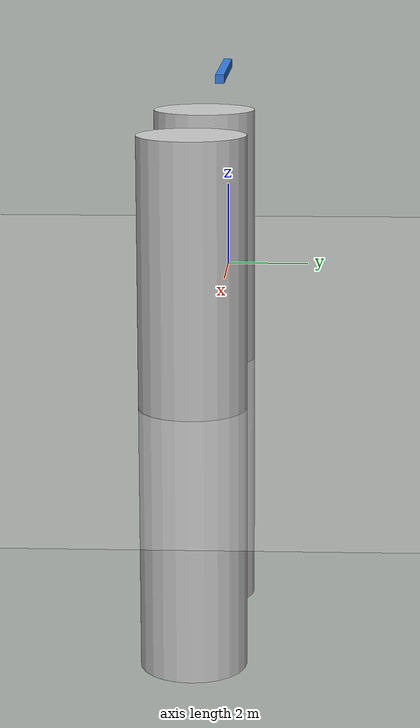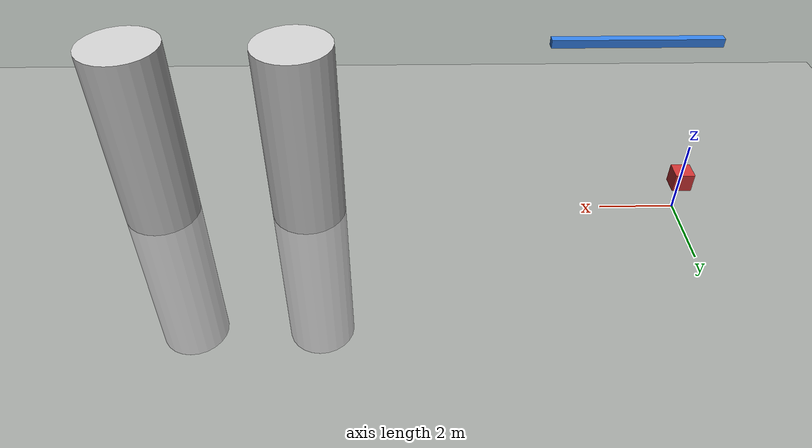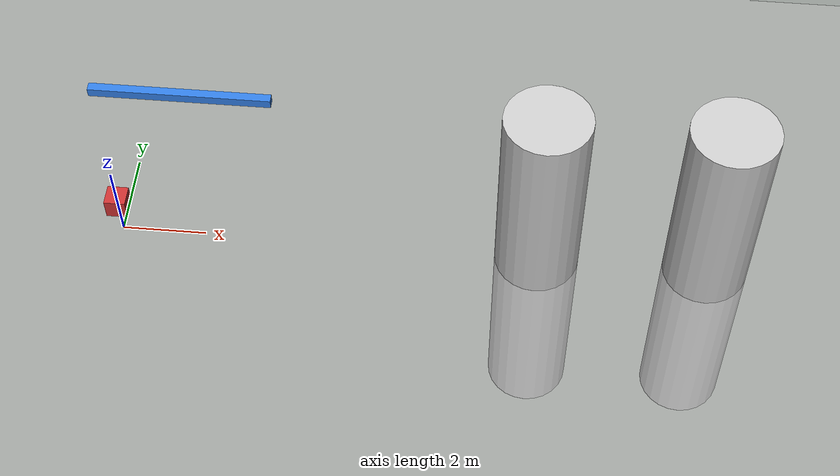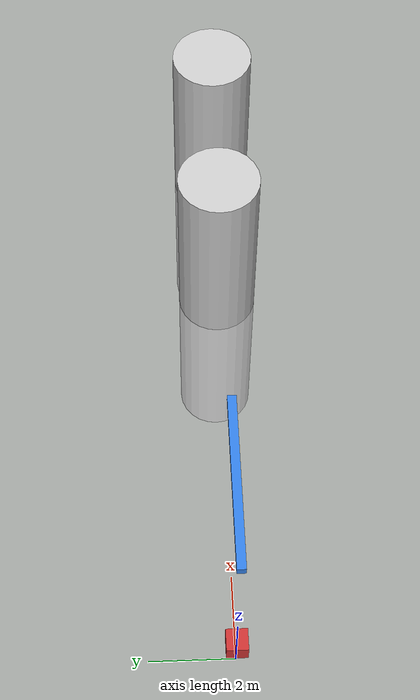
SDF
<?xml version="1.0" ?>
<sdf version="1.9">

  <world name="default">

    <!-- Declares which physics System to load, and its config -->
    <physics name="1ms" type="dartsim">
      <max_step_size>0.001</max_step_size>
      <real_time_factor>1.0</real_time_factor>
    </physics>

    <plugin filename="gz-sim-physics-system" name="gz::sim::systems::Physics"/>
    <plugin filename="gz-sim-sensors-system" name="gz::sim::systems::Sensors"/>
    <plugin filename="gz-sim-scene-broadcaster-system" name="gz::sim::systems::SceneBroadcaster"/>
    <plugin filename="gz-sim-user-commands-system" name="gz::sim::systems::UserCommands"/>

    <model name="pendulum_test">
      <link name="arm">
        <pose>2 0 5 0 1.5708 0</pose>
        <inertial>
          <mass>1.0</mass>
          <inertia>
            <ixx>1.33</ixx><iyy>1.33</iyy><izz>0.0067</izz>
            <ixy>0</ixy><ixz>0</ixz><iyz>0</iyz>
          </inertia>
        </inertial>
        <collision name="collision">
          <geometry><box><size>0.2 0.2 4</size></box></geometry>
        </collision>
        <visual name="visual">
          <geometry><box><size>0.2 0.2 4</size></box></geometry>
          <material>
            <ambient>0.2 0.5 0.9 1</ambient>
            <diffuse>0.2 0.5 0.9 1</diffuse>
          </material>
        </visual>
      </link>
      <joint name="pin" type="revolute">
        <parent>world</parent>
        <child>arm</child>
        <pose>0 0 -2 0 0 0</pose>
        <axis>
          <xyz>0 1 0</xyz>
          <limit>
            <lower>-3.14</lower>
            <upper>3.14</upper>
          </limit>
        </axis>
      </joint>

      <plugin filename="gz-sim-joint-position-controller-system"
              name="gz::sim::systems::JointPositionController">
        <joint_name>pin</joint_name>
        <topic>/pendulum_test/cmd_pos</topic>
        <p_gain>50</p_gain>
        <i_gain>0.1</i_gain>
        <d_gain>1</d_gain>
        <i_max>1</i_max>
        <i_min>-1</i_min>
        <cmd_max>50</cmd_max>
        <cmd_min>-50</cmd_min>
      </plugin>
    </model>

    <!-- A Light entity, same as "sun" in the tree -->
    <light type="directional" name="sun">
      <cast_shadows>true</cast_shadows>
      <pose>0 0 10 0 0 0</pose>
      <direction>-0.5 0.1 -0.9</direction>
    </light>

    <!-- A Model entity, same as "ground_plane" -->
    <model name="ground_plane">
      <static>true</static>
      <link name="link">
        <collision name="collision">
          <geometry><plane><normal>0 0 1</normal></plane></geometry>
        </collision>
        <visual name="visual">
          <geometry><plane><normal>0 0 1</normal><size>100 100</size></plane></geometry>
          <material>
            <ambient>0.8 0.8 0.8 1</ambient>
            <diffuse>0.8 0.8 0.8 1</diffuse>
          </material>
        </visual>
      </link>
    </model>

    <!-- A Model entity, same as "ground_plane" -->
    <model name="joint_uno">

      <!-- link1: the "post" -- stays fixed via being the joint's parent
           with nothing else acting on it (still dynamic, but nothing
           will move it since only link2 is hinged to it). -->
      <link name="link1">
      <pose>10 0 0 0 0 0</pose>
        <collision name="collision">
          <geometry><cylinder><radius>1</radius><length>10</length></cylinder></geometry>
        </collision>
        <inertial>
          <mass>1.0</mass>
          <inertia>
            <ixx>8.5833</ixx><iyy>8.5833</iyy><izz>0.5</izz>
            <ixy>0</ixy><ixz>0</ixz><iyz>0</iyz>
          </inertia>
        </inertial>
        <visual name="visual">
          <geometry><cylinder><radius>1</radius><length>10</length></cylinder></geometry>
          <material>
            <ambient>0.8 0.8 0.8 1</ambient>
            <diffuse>0.8 0.8 0.8 1</diffuse>
          </material>
        </visual>
      </link>

    <!-- link2: the "gate" -- hinges around link1 like a swinging door -->
    <link name="link2">
      <pose>14 0 0 0 0 0</pose>
        <collision name="collision">
          <geometry><cylinder><radius>1</radius><length>10</length></cylinder></geometry>
        </collision>
        <inertial>
          <mass>1.0</mass>
          <inertia>
            <ixx>8.5833</ixx><iyy>8.5833</iyy><izz>0.5</izz>
            <ixy>0</ixy><ixz>0</ixz><iyz>0</iyz>
          </inertia>
        </inertial>
        <visual name="visual">
          <geometry><cylinder><radius>1</radius><length>10</length></cylinder></geometry>
          <material>
            <ambient>0.8 0.8 0.8 1</ambient>
            <diffuse>0.8 0.8 0.8 1</diffuse>
          </material>
        </visual>
      </link>

  <joint name="anchor" type="fixed">
    <parent>world</parent>
    <child>link1</child>
  </joint>

  <!-- Joint pose is expressed relative to the CHILD link's origin (link2,
       at x=14). We want the hinge point to sit at link1's position
       (x=10), so the offset here is 10-14 = -4 along X. -->
  <joint name="jointer" type="revolute">
    <parent>link1</parent>
    <child>link2</child>
    <pose>-4 0 0 0 0 0</pose>
    <axis>
      <xyz>0 1 0</xyz>
      <limit>
        <lower>-1.57</lower>
        <upper>1.57</upper>
      </limit>
    </axis>
  </joint>
    </model>

    <model name="box">
      <pose>0 0 1 0 0 0</pose>
      <static>false</static>
      <link name="box_link">
        <inertial>
          <mass>1.0</mass>
          <inertia>
            <ixx>0.1667</ixx><iyy>0.1667</iyy><izz>0.1667</izz>
            <ixy>0</ixy><ixz>0</ixz><iyz>0</iyz>
          </inertia>
        </inertial>
        <collision name="collision">
          <geometry><box><size>0.5 0.5 0.5</size></box></geometry>
        </collision>
        <visual name="visual">
          <geometry><box><size>0.5 0.5 0.5</size></box></geometry>
          <material>
            <ambient>0.8 0.2 0.2 1</ambient>
            <diffuse>0.8 0.2 0.2 1</diffuse>
          </material>
        </visual>
      </link>
    </model>

  </world>
</sdf>
